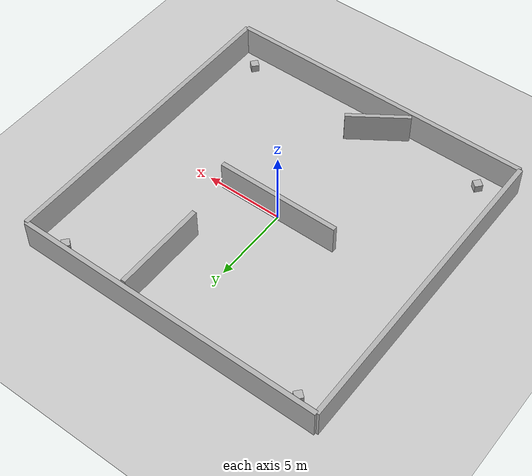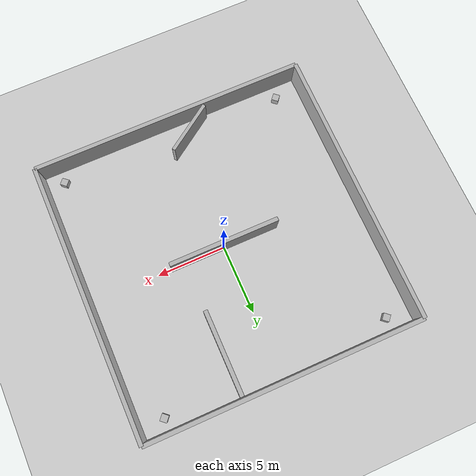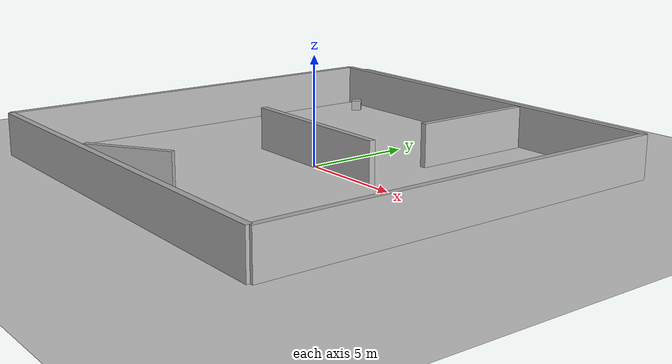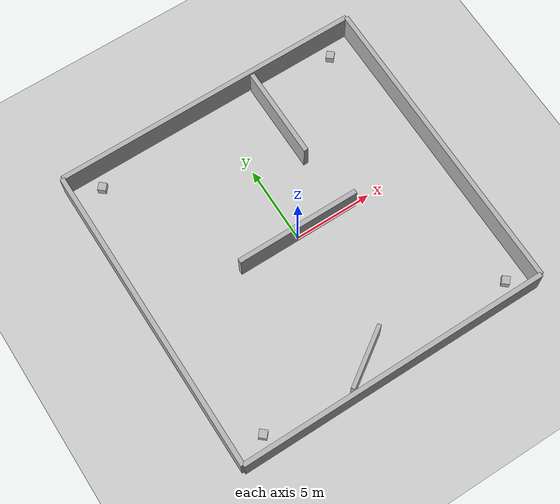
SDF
<?xml version="1.0"?>
<sdf version='1.10'>
  <world name='empty'>
    <physics name='1ms' type='ignored'>
      <max_step_size>0.001</max_step_size>
      <real_time_factor>1</real_time_factor>
      <real_time_update_rate>1000</real_time_update_rate>
    </physics>
    <plugin name='gz::sim::systems::Physics' filename='gz-sim-physics-system'/>
    <plugin name='gz::sim::systems::UserCommands' filename='gz-sim-user-commands-system'/>
    <plugin name='gz::sim::systems::SceneBroadcaster' filename='gz-sim-scene-broadcaster-system'/>
    <plugin name='gz::sim::systems::Contact' filename='gz-sim-contact-system'/>
    <plugin name='gz::sim::systems::Sensors' filename='gz-sim-sensors-system'/>
    <gravity>0 0 -9.8</gravity>
    <magnetic_field>5.56e-06 2.28e-05 -4.23e-05</magnetic_field>
    <atmosphere type='adiabatic'/>
    <scene>
      <ambient>0.4 0.4 0.4 1</ambient>
      <background>0.7 0.7 0.7 1</background>
      <shadows>true</shadows>
    </scene>

    <!-- ground unchanged -->
    <model name='ground_plane'>
      <static>true</static>
      <link name='link'>
        <collision name='collision'>
          <geometry>
            <plane>
              <normal>0 0 1</normal>
              <size>100 100</size>
            </plane>
          </geometry>
        </collision>
        <visual name='visual'>
          <geometry>
            <plane>
              <normal>0 0 1</normal>
              <size>100 100</size>
            </plane>
          </geometry>
          <material>
            <ambient>0.8 0.8 0.8 1</ambient>
            <diffuse>0.8 0.8 0.8 1</diffuse>
            <specular>0.8 0.8 0.8 1</specular>
          </material>
        </visual>
      </link>
    </model>

    <model name='wall_north'>
      <static>true</static>
      <pose>0 10 1 0 0 0</pose>
      <link name='link'>
        <visual name='visual'>
          <geometry><box><size>20 0.3 2</size></box></geometry>
          <material>
            <ambient>0.7 0.7 0.7 1</ambient>
            <diffuse>0.7 0.7 0.7 1</diffuse>
            <specular>0.1 0.1 0.1 1</specular>
          </material>
        </visual>
        <collision name='collision'>
          <geometry><box><size>20 0.3 2</size></box></geometry>
        </collision>
      </link>
    </model>

    <model name='wall_south'>
      <static>true</static>
      <pose>0 -10 1 0 0 0</pose>
      <link name='link'>
        <visual name='visual'>
          <geometry><box><size>20 0.3 2</size></box></geometry>
          <material>
            <ambient>0.7 0.7 0.7 1</ambient>
            <diffuse>0.7 0.7 0.7 1</diffuse>
            <specular>0.1 0.1 0.1 1</specular>
          </material>
        </visual>
        <collision name='collision'>
          <geometry><box><size>20 0.3 2</size></box></geometry>
        </collision>
      </link>
    </model>

    <model name='wall_east'>
      <static>true</static>
      <pose>10 0 1 0 0 0</pose>
      <link name='link'>
        <visual name='visual'>
          <geometry><box><size>0.3 20 2</size></box></geometry>
          <material>
            <ambient>0.7 0.7 0.7 1</ambient>
            <diffuse>0.7 0.7 0.7 1</diffuse>
            <specular>0.1 0.1 0.1 1</specular>
          </material>
        </visual>
        <collision name='collision'>
          <geometry><box><size>0.3 20 2</size></box></geometry>
        </collision>
      </link>
    </model>

    <model name='wall_west'>
      <static>true</static>
      <pose>-10 0 1 0 0 0</pose>
      <link name='link'>
        <visual name='visual'>
          <geometry><box><size>0.3 20 2</size></box></geometry>
          <material>
            <ambient>0.7 0.7 0.7 1</ambient>
            <diffuse>0.7 0.7 0.7 1</diffuse>
            <specular>0.1 0.1 0.1 1</specular>
          </material>
        </visual>
        <collision name='collision'>
          <geometry><box><size>0.3 20 2</size></box></geometry>
        </collision>
      </link>
    </model>

    <model name='inner_wall_1'>
      <static>true</static>
      <pose>0 0 1 0 0 0</pose>
      <link name='link'>
        <visual name='visual'>
          <geometry><box><size>8 0.3 2</size></box></geometry>
          <material>
            <ambient>0.7 0.7 0.7 1</ambient>
            <diffuse>0.7 0.7 0.7 1</diffuse>
            <specular>0.1 0.1 0.1 1</specular>
          </material>
        </visual>
        <collision name='collision'>
          <geometry><box><size>8 0.3 2</size></box></geometry>
        </collision>
      </link>
    </model>

    <model name='inner_wall_2'>
      <static>true</static>
      <pose>3 6.76747 1 0 0 0</pose>
      <link name='link'>
        <visual name='visual'>
          <geometry><box><size>0.3 6 2</size></box></geometry>
          <material>
            <ambient>0.7 0.7 0.7 1</ambient>
            <diffuse>0.7 0.7 0.7 1</diffuse>
            <specular>0.1 0.1 0.1 1</specular>
          </material>
        </visual>
        <collision name='collision'>
          <geometry><box><size>0.3 6 2</size></box></geometry>
        </collision>
      </link>
    </model>

    <model name='inner_wall_3'>
      <static>true</static>
      <pose>-1.0469 -8.58647 1 0 0 0.6</pose>
      <link name='link'>
        <visual name='visual'>
          <geometry><box><size>4 0.25 2</size></box></geometry>
          <material>
            <ambient>0.7 0.7 0.7 1</ambient>
            <diffuse>0.7 0.7 0.7 1</diffuse>
            <specular>0.1 0.1 0.1 1</specular>
          </material>
        </visual>
        <collision name='collision'>
          <geometry><box><size>4 0.25 2</size></box></geometry>
        </collision>
      </link>
    </model>

    <model name='aruco_box'>
      <pose>-8.13393 8.96476 0.25 0 0 -0.70923</pose>
      <link name='link'>
        <collision name='collision'>
          <geometry><box><size>0.5 0.5 0.5</size></box></geometry>
        </collision>
        <visual name='aruco_box_mesh'>
          <geometry>
            <mesh>
              <uri>model://aruco_box1/model.dae</uri>
              <scale>0.25 0.25 0.25</scale>
            </mesh>
          </geometry>
        </visual>
      </link>
    </model>

    <model name='aruco_box_1'>
      <pose>8.2066 9.01096 0.25 0 0 -0.70923</pose>
      <link name='link'>
        <collision name='collision'>
          <geometry><box><size>0.5 0.5 0.5</size></box></geometry>
        </collision>
        <visual name='aruco_box_mesh'>
          <geometry>
            <mesh>
              <uri>model://aruco_box2/model.dae</uri>
              <scale>0.25 0.25 0.25</scale>
            </mesh>
          </geometry>
        </visual>
      </link>
    </model>

    <model name='aruco_box_2'>
      <pose>8.59999 -8.8995 0.25 0 0 -0.70923</pose>
      <link name='link'>
        <collision name='collision'>
          <geometry><box><size>0.5 0.5 0.5</size></box></geometry>
        </collision>
        <visual name='aruco_box_mesh'>
          <geometry>
            <mesh>
              <uri>model://aruco_box3/model.dae</uri>
              <scale>0.25 0.25 0.25</scale>
            </mesh>
          </geometry>
        </visual>
      </link>
    </model>

    <model name='aruco_box_3'>
      <pose>-8.04121 -8.85077 0.25 0 0 -0.70923</pose>
      <link name='link'>
        <collision name='collision'>
          <geometry><box><size>0.5 0.5 0.5</size></box></geometry>
        </collision>
        <visual name='aruco_box_mesh'>
          <geometry>
            <mesh>
              <uri>model://aruco_box4/model.dae</uri>
              <scale>0.25 0.25 0.25</scale>
            </mesh>
          </geometry>
        </visual>
      </link>
    </model>

    <light name='sun' type='directional'>
      <pose>0 0 10 0 0 0</pose>
      <direction>-0.5 0.1 -0.9</direction>
      <diffuse>0.8 0.8 0.8 1</diffuse>
      <specular>0.2 0.2 0.2 1</specular>
    </light>

  </world>
</sdf>
